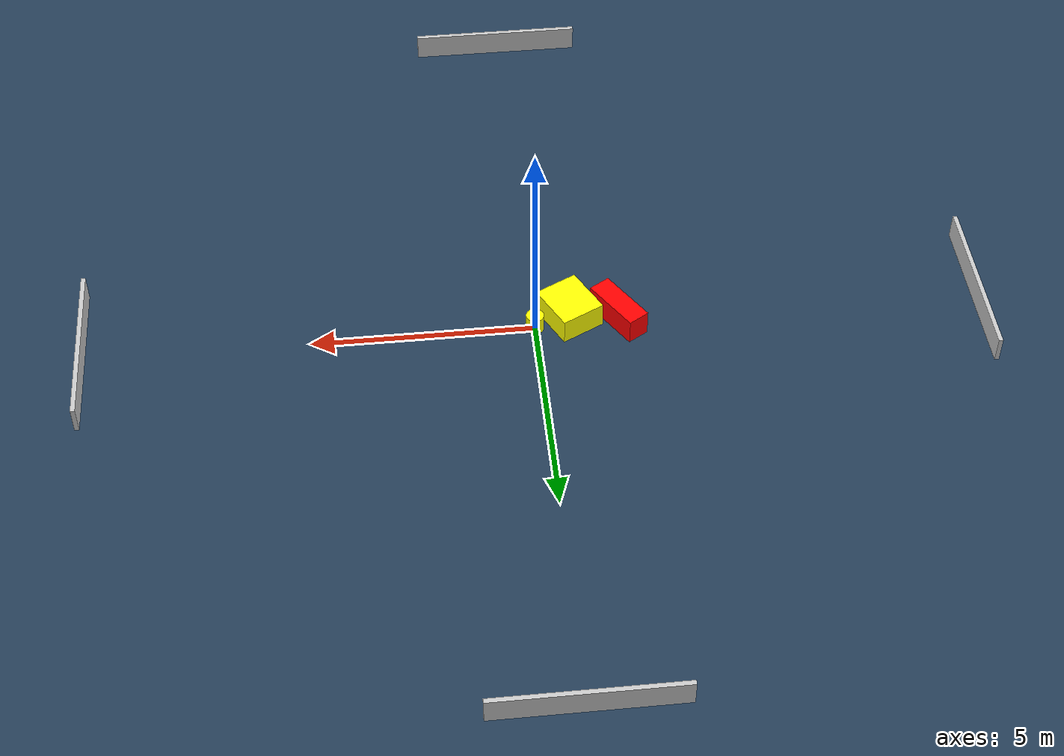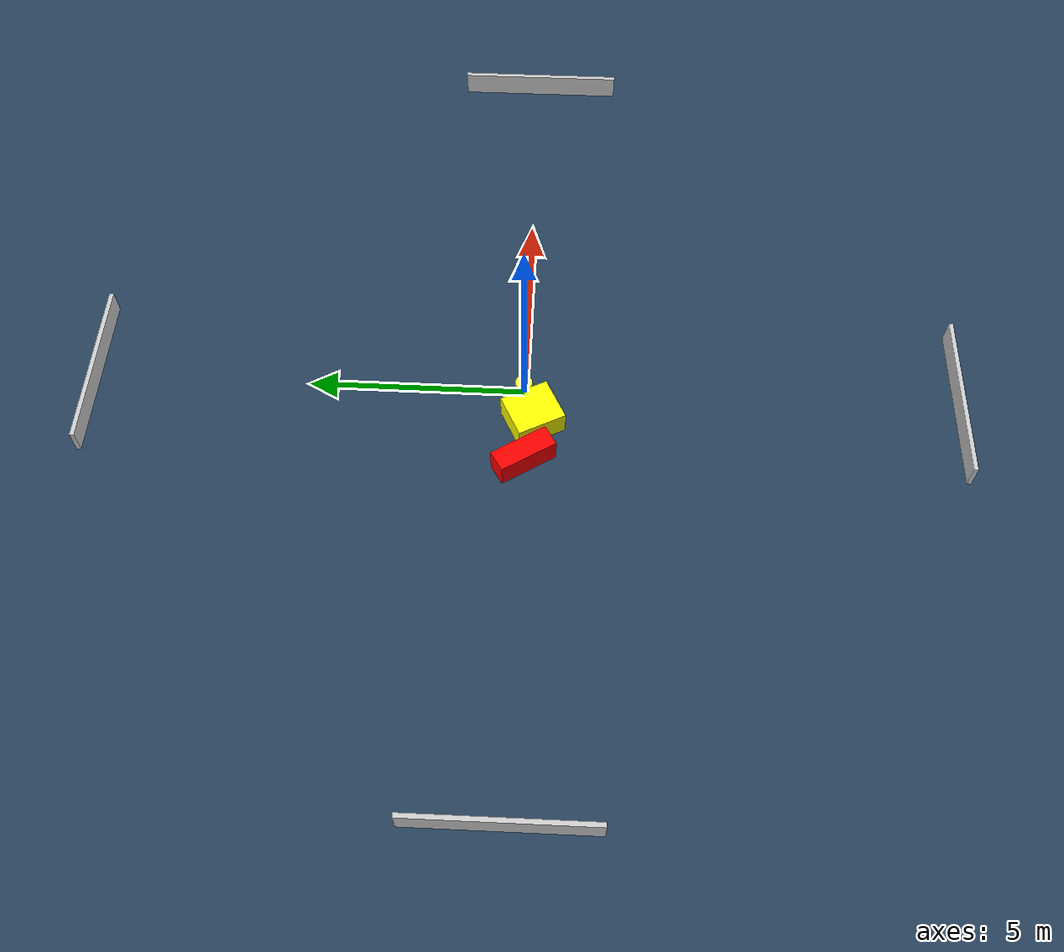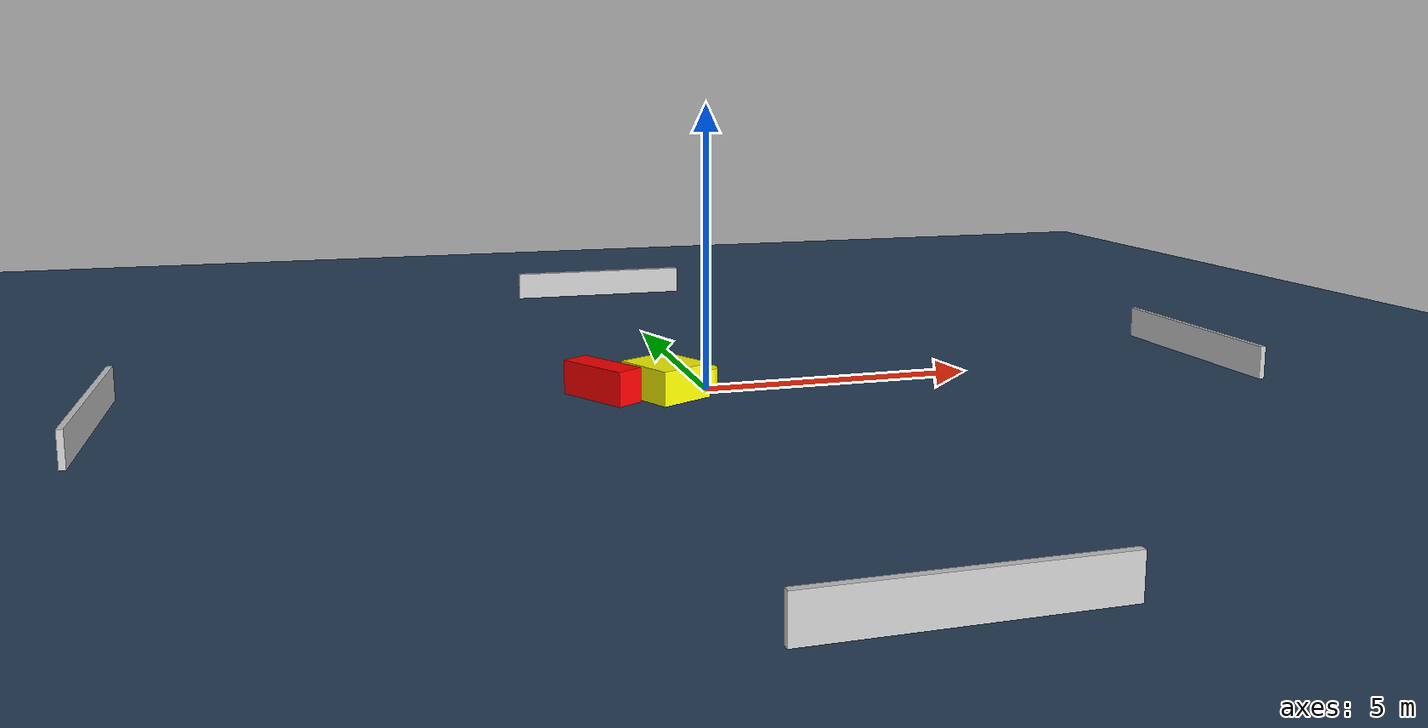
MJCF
<?xml version="1.0" ?>
<mujoco model="generated_environment">
  <option timestep="0.01" integrator="RK4" cone="elliptic"/>
  <default>
    <geom density="1"/>
  </default>
  <asset>
    <texture builtin="gradient" height="3072" name="skybox" rgb1="0.3 0.5 0.7" rgb2="0 0 0" type="skybox" width="512"/>
    <texture builtin="checker" height="300" name="groundplane" rgb1="0.2 0.3 0.4" rgb2="0.1 0.2 0.3" type="2d" width="300"/>
    <material name="groundplane" reflectance="0.2" texrepeat="5 5" texture="groundplane"/>
  </asset>
  <worldbody>
    <light dir="0 0 -1" directional="true" pos="0 0 1.5"/>
    <geom condim="3" friction="0.5 0.005 0.001" material="groundplane" name="floor" pos="0 0 0" size="0 0 0.05" type="plane"/>
    <body name="walls">
      <geom name="wall_1" condim="4" pos="-10.0 0.0 0.3" rgba="0.800000011920929 0.800000011920929 0.800000011920929 1.0" size="0.05 2.0 0.3" type="box"/>
      <geom name="wall_2" condim="4" pos="10.0 0.0 0.3" rgba="0.800000011920929 0.800000011920929 0.800000011920929 1.0" size="0.05 2.0 0.3" type="box"/>
      <geom name="wall_3" condim="4" pos="0.0 -10.0 0.3" rgba="0.800000011920929 0.800000011920929 0.800000011920929 1.0" size="2.0 0.05 0.3" type="box"/>
      <geom name="wall_4" condim="4" pos="0.0 10.0 0.3" rgba="0.800000011920929 0.800000011920929 0.800000011920929 1.0" size="2.0 0.05 0.3" type="box"/>
    </body>
    <body name="robot">
      <joint name="joint_x" type="slide" pos="0 0 0" axis="1 0 0"/>
      <joint name="joint_y" type="slide" pos="0 0 0" axis="0 1 0"/>
      <geom name="robot" type="cylinder" pos="0.0 0.0 0.2" size="0.2 0.2 0.0" mass="5.0" friction="1.0 0.005 0.0001" condim="4" rgba="1.0 1.0 0.0 1.0"/>
    </body>
    <body name="obstacle_1_movable">
      <geom name="obstacle_1_movable" condim="4" pos="-0.7951088082626949 -0.2389256805487937 0.3" euler="0 0 27.099837414677197" friction="0.0 0.005 0.001" rgba="1.0 1.0 0.0 1.0" size="0.5131867226352103 0.5737549056999246 0.3" type="box" mass="0.1"/>
      <joint type="free"/>
    </body>
    <body name="obstacle_2_static">
      <geom name="obstacle_2_static" condim="4" pos="-1.8830705002228163 -0.07316731198904546 0.3" euler="0 0 32.160641521492586" friction="0.0 0.005 0.001" rgba="1.0 0.0 0.0 1.0" size="0.25557360282070785 0.6959340213412194 0.3" type="box"/>
    </body>
  </worldbody>
  <actuator>
    <motor name="actuator_x" joint="joint_x" gear="1" ctrlrange="-1 1"/>
    <motor name="actuator_y" joint="joint_y" gear="1" ctrlrange="-1 1"/>
  </actuator>
</mujoco>
